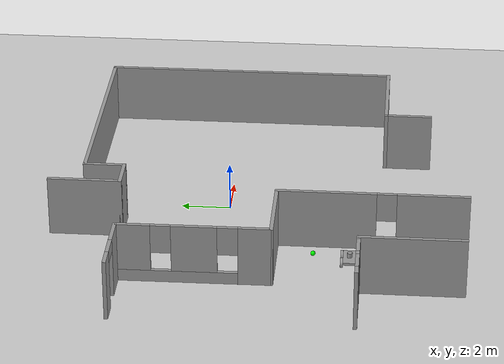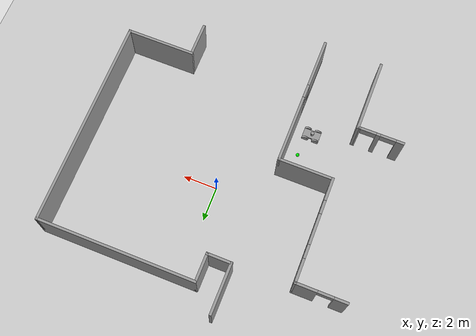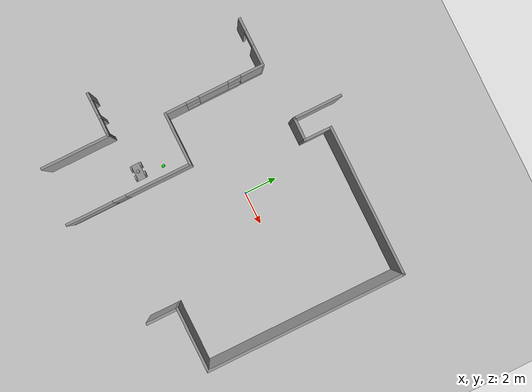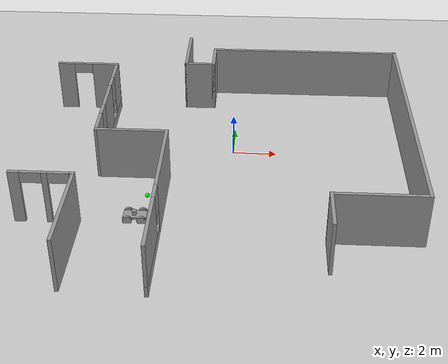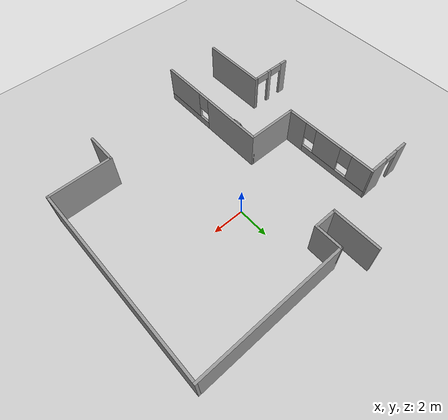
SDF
<sdf version="1.7">
 <world name="__default__">
  <model name="building2">
   <pose>-0.46436 -1.33709 0 0 -0 0</pose>
   <link name="Wall_1">
    <collision name="Wall_1_Collision">
     <geometry><box><size>3.25 0.15 2.5</size></box></geometry>
     <pose>0 0 1.25 0 -0 0</pose>
    </collision>
    <visual name="Wall_1_Visual">
     <pose>0 0 1.25 0 -0 0</pose>
     <geometry><box><size>3.25 0.15 2.5</size></box></geometry>
     <material>
      <script><uri>file://media/materials/scripts/gazebo.material</uri><name>Gazebo/Grey</name></script>
      <ambient>1 1 1 1</ambient>
     </material>
     <meta><layer>0</layer></meta>
    </visual>
    <pose>-3.91564 -0.782909 0 0 -0 0</pose>
   </link>
   <link name="Wall_10">
    <pose>-6.93769 5.27004 0 0 -0 3.14159</pose>
    <visual name="Wall_10_Visual_0">
     <pose>-0.850707 0 1.25 0 -0 0</pose>
     <geometry><box><size>1.29859 0.15 2.5</size></box></geometry>
     <material>
      <script><uri>file://media/materials/scripts/gazebo.material</uri><name>Gazebo/Grey</name></script>
      <ambient>1 1 1 1</ambient>
     </material>
     <meta><layer>0</layer></meta>
    </visual>
    <collision name="Wall_10_Collision_0">
     <geometry><box><size>1.29859 0.15 2.5</size></box></geometry>
     <pose>-0.850707 0 1.25 0 -0 0</pose>
    </collision>
    <visual name="Wall_10_Visual_1">
     <pose>1.09929 0 1.25 0 -0 0</pose>
     <geometry><box><size>0.801414 0.15 2.5</size></box></geometry>
     <material>
      <script><uri>file://media/materials/scripts/gazebo.material</uri><name>Gazebo/Grey</name></script>
      <ambient>1 1 1 1</ambient>
     </material>
     <meta><layer>0</layer></meta>
    </visual>
    <collision name="Wall_10_Collision_1">
     <geometry><box><size>0.801414 0.15 2.5</size></box></geometry>
     <pose>1.09929 0 1.25 0 -0 0</pose>
    </collision>
    <visual name="Wall_10_Visual_2">
     <pose>0.248586 0 2.25 0 -0 0</pose>
     <geometry><box><size>0.9 0.15 0.5</size></box></geometry>
     <material>
      <script><uri>file://media/materials/scripts/gazebo.material</uri><name>Gazebo/Grey</name></script>
      <ambient>1 1 1 1</ambient>
     </material>
     <meta><layer>0</layer></meta>
    </visual>
    <collision name="Wall_10_Collision_2">
     <geometry><box><size>0.9 0.15 0.5</size></box></geometry>
     <pose>0.248586 0 2.25 0 -0 0</pose>
    </collision>
   </link>
   <link name="Wall_13">
    <collision name="Wall_13_Collision">
     <geometry><box><size>3 0.15 2.5</size></box></geometry>
     <pose>0 0 1.25 0 -0 0</pose>
    </collision>
    <visual name="Wall_13_Visual">
     <pose>0 0 1.25 0 -0 0</pose>
     <geometry><box><size>3 0.15 2.5</size></box></geometry>
     <material>
      <script><uri>file://media/materials/scripts/gazebo.material</uri><name>Gazebo/Grey</name></script>
      <ambient>1 1 1 1</ambient>
     </material>
     <meta><layer>0</layer></meta>
    </visual>
    <pose>-2.07281 6.95791 0 0 -0 -1.5708</pose>
   </link>
   <link name="Wall_14">
    <collision name="Wall_14_Collision">
     <geometry><box><size>1.5 0.15 2.5</size></box></geometry>
     <pose>0 0 1.25 0 -0 0</pose>
    </collision>
    <visual name="Wall_14_Visual">
     <pose>0 0 1.25 0 -0 0</pose>
     <geometry><box><size>1.5 0.15 2.5</size></box></geometry>
     <material>
      <script><uri>file://media/materials/scripts/gazebo.material</uri><name>Gazebo/Grey</name></script>
      <ambient>1 1 1 1</ambient>
     </material>
     <meta><layer>0</layer></meta>
    </visual>
    <pose>-1.39781 5.53291 0 0 -0 0</pose>
   </link>
   <link name="Wall_15">
    <collision name="Wall_15_Collision">
     <geometry><box><size>1.75 0.15 2.5</size></box></geometry>
     <pose>0 0 1.25 0 -0 0</pose>
    </collision>
    <visual name="Wall_15_Visual">
     <pose>0 0 1.25 0 -0 0</pose>
     <geometry><box><size>1.75 0.15 2.5</size></box></geometry>
     <material>
      <script><uri>file://media/materials/scripts/gazebo.material</uri><name>Gazebo/Grey</name></script>
      <ambient>1 1 1 1</ambient>
     </material>
     <meta><layer>0</layer></meta>
    </visual>
    <pose>-0.722812 6.33291 0 0 -0 1.5708</pose>
   </link>
   <link name="Wall_16">
    <collision name="Wall_16_Collision">
     <geometry><box><size>9.25 0.15 2.5</size></box></geometry>
     <pose>0 0 1.25 0 -0 0</pose>
    </collision>
    <visual name="Wall_16_Visual">
     <pose>0 0 1.25 0 -0 0</pose>
     <geometry><box><size>9.25 0.15 2.5</size></box></geometry>
     <material>
      <script><uri>file://media/materials/scripts/gazebo.material</uri><name>Gazebo/Grey</name></script>
      <ambient>1 1 1 1</ambient>
     </material>
     <meta><layer>0</layer></meta>
    </visual>
    <pose>3.82719 7.13291 0 0 -0 0</pose>
   </link>
   <link name="Wall_18">
    <collision name="Wall_18_Collision">
     <geometry><box><size>12.25 0.15 2.5</size></box></geometry>
     <pose>0 0 1.25 0 -0 0</pose>
    </collision>
    <visual name="Wall_18_Visual">
     <pose>0 0 1.25 0 -0 0</pose>
     <geometry><box><size>12.25 0.15 2.5</size></box></geometry>
     <material>
      <script><uri>file://media/materials/scripts/gazebo.material</uri><name>Gazebo/Grey</name></script>
      <ambient>1 1 1 1</ambient>
     </material>
     <meta><layer>0</layer></meta>
    </visual>
    <pose>8.37719 1.08291 0 0 -0 -1.5708</pose>
   </link>
   <link name="Wall_2">
    <pose>-2.36564 -4.58291 0 0 -0 -1.5708</pose>
    <visual name="Wall_2_Visual_0">
     <pose>-1.85139 0 1.25 0 -0 0</pose>
     <geometry><box><size>4.04722 0.15 2.5</size></box></geometry>
     <material>
      <script><uri>file://media/materials/scripts/gazebo.material</uri><name>Gazebo/Grey</name></script>
      <ambient>1 1 1 1</ambient>
     </material>
     <meta><layer>0</layer></meta>
    </visual>
    <collision name="Wall_2_Collision_0">
     <geometry><box><size>4.04722 0.15 2.5</size></box></geometry>
     <pose>-1.85139 0 1.25 0 -0 0</pose>
    </collision>
    <visual name="Wall_2_Visual_1">
     <pose>2.02361 0 0.25 0 -0 0</pose>
     <geometry><box><size>3.70278 0.15 0.5</size></box></geometry>
     <material>
      <script><uri>file://media/materials/scripts/gazebo.material</uri><name>Gazebo/Grey</name></script>
      <ambient>1 1 1 1</ambient>
     </material>
     <meta><layer>0</layer></meta>
    </visual>
    <collision name="Wall_2_Collision_1">
     <geometry><box><size>3.70278 0.15 0.5</size></box></geometry>
     <pose>2.02361 0 0.25 0 -0 0</pose>
    </collision>
    <visual name="Wall_2_Visual_2">
     <pose>2.42361 0 1.5 0 -0 0</pose>
     <geometry><box><size>2.90278 0.15 2</size></box></geometry>
     <material>
      <script><uri>file://media/materials/scripts/gazebo.material</uri><name>Gazebo/Grey</name></script>
      <ambient>1 1 1 1</ambient>
     </material>
     <meta><layer>0</layer></meta>
    </visual>
    <collision name="Wall_2_Collision_2">
     <geometry><box><size>2.90278 0.15 2</size></box></geometry>
     <pose>2.42361 0 1.5 0 -0 0</pose>
    </collision>
    <visual name="Wall_2_Visual_3">
     <pose>0.57222 0 1.9 0 -0 0</pose>
     <geometry><box><size>0.8 0.15 1.2</size></box></geometry>
     <material>
      <script><uri>file://media/materials/scripts/gazebo.material</uri><name>Gazebo/Grey</name></script>
      <ambient>1 1 1 1</ambient>
     </material>
     <meta><layer>0</layer></meta>
    </visual>
    <collision name="Wall_2_Collision_3">
     <geometry><box><size>0.8 0.15 1.2</size></box></geometry>
     <pose>0.57222 0 1.9 0 -0 0</pose>
    </collision>
   </link>
   <link name="Wall_21">
    <collision name="Wall_21_Collision">
     <geometry><box><size>4 0.15 2.5</size></box></geometry>
     <pose>0 0 1.25 0 -0 0</pose>
    </collision>
    <visual name="Wall_21_Visual">
     <pose>0 0 1.25 0 -0 0</pose>
     <geometry><box><size>4 0.15 2.5</size></box></geometry>
     <material>
      <script><uri>file://media/materials/scripts/gazebo.material</uri><name>Gazebo/Grey</name></script>
      <ambient>1 1 1 1</ambient>
     </material>
     <meta><layer>0</layer></meta>
    </visual>
    <pose>6.45219 -4.96709 0 0 -0 3.14159</pose>
   </link>
   <link name="Wall_22">
    <collision name="Wall_22_Collision">
     <geometry><box><size>2 0.15 2.5</size></box></geometry>
     <pose>0 0 1.25 0 -0 0</pose>
    </collision>
    <visual name="Wall_22_Visual">
     <pose>0 0 1.25 0 -0 0</pose>
     <geometry><box><size>2 0.15 2.5</size></box></geometry>
     <material>
      <script><uri>file://media/materials/scripts/gazebo.material</uri><name>Gazebo/Grey</name></script>
      <ambient>1 1 1 1</ambient>
     </material>
     <meta><layer>0</layer></meta>
    </visual>
    <pose>4.52719 -5.89209 0 0 -0 -1.5708</pose>
   </link>
   <link name="Wall_5">
    <collision name="Wall_5_Collision">
     <geometry><box><size>4.25 0.15 2.5</size></box></geometry>
     <pose>0 0 1.25 0 -0 0</pose>
    </collision>
    <visual name="Wall_5_Visual">
     <pose>0 0 1.25 0 -0 0</pose>
     <geometry><box><size>4.25 0.15 2.5</size></box></geometry>
     <material>
      <script><uri>file://media/materials/scripts/gazebo.material</uri><name>Gazebo/Grey</name></script>
      <ambient>1 1 1 1</ambient>
     </material>
     <meta><layer>0</layer></meta>
    </visual>
    <pose>-5.77719 -6.20253 0 0 -0 -1.5708</pose>
   </link>
   <link name="Wall_7">
    <pose>-7.07719 -4.15253 0 0 -0 3.14159</pose>
    <visual name="Wall_7_Visual_0">
     <pose>-1.25987 0 1.25 0 -0 0</pose>
     <geometry><box><size>0.230254 0.15 2.5</size></box></geometry>
     <material>
      <script><uri>file://media/materials/scripts/gazebo.material</uri><name>Gazebo/Grey</name></script>
      <ambient>1 1 1 1</ambient>
     </material>
     <meta><layer>0</layer></meta>
    </visual>
    <collision name="Wall_7_Collision_0">
     <geometry><box><size>0.230254 0.15 2.5</size></box></geometry>
     <pose>-1.25987 0 1.25 0 -0 0</pose>
    </collision>
    <visual name="Wall_7_Visual_1">
     <pose>-0.1243 0 1.25 0 -0 0</pose>
     <geometry><box><size>0.240891 0.15 2.5</size></box></geometry>
     <material>
      <script><uri>file://media/materials/scripts/gazebo.material</uri><name>Gazebo/Grey</name></script>
      <ambient>1 1 1 1</ambient>
     </material>
     <meta><layer>0</layer></meta>
    </visual>
    <collision name="Wall_7_Collision_1">
     <geometry><box><size>0.240891 0.15 2.5</size></box></geometry>
     <pose>-0.1243 0 1.25 0 -0 0</pose>
    </collision>
    <visual name="Wall_7_Visual_2">
     <pose>1.13557 0 1.25 0 -0 0</pose>
     <geometry><box><size>0.478854 0.15 2.5</size></box></geometry>
     <material>
      <script><uri>file://media/materials/scripts/gazebo.material</uri><name>Gazebo/Grey</name></script>
      <ambient>1 1 1 1</ambient>
     </material>
     <meta><layer>0</layer></meta>
    </visual>
    <collision name="Wall_7_Collision_2">
     <geometry><box><size>0.478854 0.15 2.5</size></box></geometry>
     <pose>1.13557 0 1.25 0 -0 0</pose>
    </collision>
    <visual name="Wall_7_Visual_3">
     <pose>-0.694746 0 2.25 0 -0 0</pose>
     <geometry><box><size>0.9 0.15 0.5</size></box></geometry>
     <material>
      <script><uri>file://media/materials/scripts/gazebo.material</uri><name>Gazebo/Grey</name></script>
      <ambient>1 1 1 1</ambient>
     </material>
     <meta><layer>0</layer></meta>
    </visual>
    <collision name="Wall_7_Collision_3">
     <geometry><box><size>0.9 0.15 0.5</size></box></geometry>
     <pose>-0.694746 0 2.25 0 -0 0</pose>
    </collision>
    <visual name="Wall_7_Visual_4">
     <pose>0.446146 0 2.25 0 -0 0</pose>
     <geometry><box><size>0.9 0.15 0.5</size></box></geometry>
     <material>
      <script><uri>file://media/materials/scripts/gazebo.material</uri><name>Gazebo/Grey</name></script>
      <ambient>1 1 1 1</ambient>
     </material>
     <meta><layer>0</layer></meta>
    </visual>
    <collision name="Wall_7_Collision_4">
     <geometry><box><size>0.9 0.15 0.5</size></box></geometry>
     <pose>0.446146 0 2.25 0 -0 0</pose>
    </collision>
   </link>
   <link name="Wall_9">
    <pose>-5.48916 2.24356 0 0 -0 1.57857</pose>
    <visual name="Wall_9_Visual_0">
     <pose>-2.41932 0 1.25 0 -0 0</pose>
     <geometry><box><size>1.36504 0.15 2.5</size></box></geometry>
     <material>
      <script><uri>file://media/materials/scripts/gazebo.material</uri><name>Gazebo/Grey</name></script>
      <ambient>1 1 1 1</ambient>
     </material>
     <meta><layer>0</layer></meta>
    </visual>
    <collision name="Wall_9_Collision_0">
     <geometry><box><size>1.36504 0.15 2.5</size></box></geometry>
     <pose>-2.41932 0 1.25 0 -0 0</pose>
    </collision>
    <visual name="Wall_9_Visual_1">
     <pose>0.682521 0 0.25 0 -0 0</pose>
     <geometry><box><size>4.83864 0.15 0.5</size></box></geometry>
     <material>
      <script><uri>file://media/materials/scripts/gazebo.material</uri><name>Gazebo/Grey</name></script>
      <ambient>1 1 1 1</ambient>
     </material>
     <meta><layer>0</layer></meta>
    </visual>
    <collision name="Wall_9_Collision_1">
     <geometry><box><size>4.83864 0.15 0.5</size></box></geometry>
     <pose>0.682521 0 0.25 0 -0 0</pose>
    </collision>
    <visual name="Wall_9_Visual_2">
     <pose>-0.039376 0 1.5 0 -0 0</pose>
     <geometry><box><size>1.79484 0.15 2</size></box></geometry>
     <material>
      <script><uri>file://media/materials/scripts/gazebo.material</uri><name>Gazebo/Grey</name></script>
      <ambient>1 1 1 1</ambient>
     </material>
     <meta><layer>0</layer></meta>
    </visual>
    <collision name="Wall_9_Collision_2">
     <geometry><box><size>1.79484 0.15 2</size></box></geometry>
     <pose>-0.039376 0 1.5 0 -0 0</pose>
    </collision>
    <visual name="Wall_9_Visual_3">
     <pose>2.37994 0 1.5 0 -0 0</pose>
     <geometry><box><size>1.44379 0.15 2</size></box></geometry>
     <material>
      <script><uri>file://media/materials/scripts/gazebo.material</uri><name>Gazebo/Grey</name></script>
      <ambient>1 1 1 1</ambient>
     </material>
     <meta><layer>0</layer></meta>
    </visual>
    <collision name="Wall_9_Collision_3">
     <geometry><box><size>1.44379 0.15 2</size></box></geometry>
     <pose>2.37994 0 1.5 0 -0 0</pose>
    </collision>
    <visual name="Wall_9_Visual_4">
     <pose>-1.3368 0 1.9 0 -0 0</pose>
     <geometry><box><size>0.8 0.15 1.2</size></box></geometry>
     <material>
      <script><uri>file://media/materials/scripts/gazebo.material</uri><name>Gazebo/Grey</name></script>
      <ambient>1 1 1 1</ambient>
     </material>
     <meta><layer>0</layer></meta>
    </visual>
    <collision name="Wall_9_Collision_4">
     <geometry><box><size>0.8 0.15 1.2</size></box></geometry>
     <pose>-1.3368 0 1.9 0 -0 0</pose>
    </collision>
    <visual name="Wall_9_Visual_5">
     <pose>1.25805 0 1.9 0 -0 0</pose>
     <geometry><box><size>0.8 0.15 1.2</size></box></geometry>
     <material>
      <script><uri>file://media/materials/scripts/gazebo.material</uri><name>Gazebo/Grey</name></script>
      <ambient>1 1 1 1</ambient>
     </material>
     <meta><layer>0</layer></meta>
    </visual>
    <collision name="Wall_9_Collision_5">
     <geometry><box><size>0.8 0.15 1.2</size></box></geometry>
     <pose>1.25805 0 1.9 0 -0 0</pose>
    </collision>
   </link>
   <static>1</static>
  </model>
  <model name="simplecar">
   <link name="link_0">
    <inertial>
     <mass>1</mass>
     <inertia>
      <ixx>0.166667</ixx>
      <ixy>0</ixy>
      <ixz>0</ixz>
      <iyy>0.166667</iyy>
      <iyz>0</iyz>
      <izz>0.166667</izz>
     </inertia>
    </inertial>
    <pose>0.003333 0.003333 0.147691 0 -0 0</pose>
    <visual name="visual">
     <geometry><box><size>1 0.5 0.1</size></box></geometry>
     <material>
      <lighting>1</lighting>
      <script><uri>file://media/materials/scripts/gazebo.material</uri><name>Gazebo/Grey</name></script>
      <shader type="pixel"><normal_map>__default__</normal_map></shader>
      <ambient>0.3 0.3 0.3 1</ambient>
      <diffuse>0.7 0.7 0.7 1</diffuse>
      <specular>0.01 0.01 0.01 1</specular>
      <emissive>0 0 0 1</emissive>
     </material>
    </visual>
    <collision name="collision">
     <geometry><box><size>1 0.5 0.1</size></box></geometry>
     <surface>
      <friction>
       <ode><mu>1</mu><mu2>1</mu2><fdir1>0 0 0</fdir1><slip1>0</slip1><slip2>0</slip2></ode>
       <torsional>
        <coefficient>1</coefficient>
        <patch_radius>0</patch_radius>
        <surface_radius>0</surface_radius>
        <use_patch_radius>1</use_patch_radius>
        <ode><slip>0</slip></ode>
       </torsional>
      </friction>
      <bounce><restitution_coefficient>0</restitution_coefficient><threshold>1e+06</threshold></bounce>
      <contact>
       <collide_without_contact>0</collide_without_contact>
       <collide_without_contact_bitmask>1</collide_without_contact_bitmask>
       <collide_bitmask>1</collide_bitmask>
       <ode>
        <soft_cfm>0</soft_cfm>
        <soft_erp>0.2</soft_erp>
        <kp>1e+13</kp>
        <kd>1</kd>
        <max_vel>0.01</max_vel>
        <min_depth>0</min_depth>
       </ode>
       <bullet>
        <split_impulse>1</split_impulse>
        <split_impulse_penetration_threshold>-0.01</split_impulse_penetration_threshold>
        <soft_cfm>0</soft_cfm>
        <soft_erp>0.2</soft_erp>
        <kp>1e+13</kp>
        <kd>1</kd>
       </bullet>
      </contact>
     </surface>
    </collision>
   </link>
   <link name="link_1">
    <inertial>
     <mass>1</mass>
     <inertia><ixx>0.145833</ixx><ixy>0</ixy><ixz>0</ixz><iyy>0.145833</iyy><iyz>0</iyz><izz>0.125</izz></inertia>
    </inertial>
    <pose>-0.296667 0.303353 -0.112314 0 -0 0</pose>
    <visual name="visual">
     <pose>0 0 0.2 1.5707 -0 0</pose>
     <geometry><cylinder><radius>0.2</radius><length>0.1</length></cylinder></geometry>
     <material>
      <lighting>1</lighting>
      <script><uri>file://media/materials/scripts/gazebo.material</uri><name>Gazebo/Grey</name></script>
      <shader type="pixel"><normal_map>__default__</normal_map></shader>
      <ambient>0.3 0.3 0.3 1</ambient>
      <diffuse>0.7 0.7 0.7 1</diffuse>
      <specular>0.01 0.01 0.01 1</specular>
      <emissive>0 0 0 1</emissive>
     </material>
    </visual>
    <collision name="collision">
     <pose>0 0 0.2 1.5707 -0 0</pose>
     <geometry><cylinder><radius>0.2</radius><length>0.1</length></cylinder></geometry>
     <surface>
      <friction>
       <ode><mu>1</mu><mu2>1</mu2><fdir1>0 0 0</fdir1><slip1>0</slip1><slip2>0</slip2></ode>
       <torsional>
        <coefficient>1</coefficient>
        <patch_radius>0</patch_radius>
        <surface_radius>0</surface_radius>
        <use_patch_radius>1</use_patch_radius>
        <ode><slip>0</slip></ode>
       </torsional>
      </friction>
      <bounce><restitution_coefficient>0</restitution_coefficient><threshold>1e+06</threshold></bounce>
      <contact>
       <collide_without_contact>0</collide_without_contact>
       <collide_without_contact_bitmask>1</collide_without_contact_bitmask>
       <collide_bitmask>1</collide_bitmask>
       <ode>
        <soft_cfm>0</soft_cfm>
        <soft_erp>0.2</soft_erp>
        <kp>1e+13</kp>
        <kd>1</kd>
        <max_vel>0.01</max_vel>
        <min_depth>0</min_depth>
       </ode>
       <bullet>
        <split_impulse>1</split_impulse>
        <split_impulse_penetration_threshold>-0.01</split_impulse_penetration_threshold>
        <soft_cfm>0</soft_cfm>
        <soft_erp>0.2</soft_erp>
        <kp>1e+13</kp>
        <kd>1</kd>
       </bullet>
      </contact>
     </surface>
    </collision>
   </link>
   <link name="link_1_clone_0">
    <inertial>
     <mass>1</mass>
     <inertia><ixx>0.145833</ixx><ixy>0</ixy><ixz>0</ixz><iyy>0.145833</iyy><iyz>0</iyz><izz>0.125</izz></inertia>
    </inertial>
    <pose>0.303333 0.303353 -0.112314 0 -0 0</pose>
    <visual name="visual">
     <pose>0 0 0.2 1.5707 -0 0</pose>
     <geometry><cylinder><radius>0.2</radius><length>0.1</length></cylinder></geometry>
     <material>
      <lighting>1</lighting>
      <script><uri>file://media/materials/scripts/gazebo.material</uri><name>Gazebo/Grey</name></script>
      <shader type="pixel"><normal_map>__default__</normal_map></shader>
      <ambient>0.3 0.3 0.3 1</ambient>
      <diffuse>0.7 0.7 0.7 1</diffuse>
      <specular>0.01 0.01 0.01 1</specular>
      <emissive>0 0 0 1</emissive>
     </material>
    </visual>
    <collision name="collision">
     <pose>0 0 0.2 1.5707 -0 0</pose>
     <geometry><cylinder><radius>0.2</radius><length>0.1</length></cylinder></geometry>
     <surface>
      <friction>
       <ode><mu>1</mu><mu2>1</mu2><fdir1>0 0 0</fdir1><slip1>0</slip1><slip2>0</slip2></ode>
       <torsional>
        <coefficient>1</coefficient>
        <patch_radius>0</patch_radius>
        <surface_radius>0</surface_radius>
        <use_patch_radius>1</use_patch_radius>
        <ode><slip>0</slip></ode>
       </torsional>
      </friction>
      <bounce><restitution_coefficient>0</restitution_coefficient><threshold>1e+06</threshold></bounce>
      <contact>
       <collide_without_contact>0</collide_without_contact>
       <collide_without_contact_bitmask>1</collide_without_contact_bitmask>
       <collide_bitmask>1</collide_bitmask>
       <ode>
        <soft_cfm>0</soft_cfm>
        <soft_erp>0.2</soft_erp>
        <kp>1e+13</kp>
        <kd>1</kd>
        <max_vel>0.01</max_vel>
        <min_depth>0</min_depth>
       </ode>
       <bullet>
        <split_impulse>1</split_impulse>
        <split_impulse_penetration_threshold>-0.01</split_impulse_penetration_threshold>
        <soft_cfm>0</soft_cfm>
        <soft_erp>0.2</soft_erp>
        <kp>1e+13</kp>
        <kd>1</kd>
       </bullet>
      </contact>
     </surface>
    </collision>
   </link>
   <link name="link_1_clone_1">
    <inertial>
     <mass>1</mass>
     <inertia><ixx>0.145833</ixx><ixy>0</ixy><ixz>0</ixz><iyy>0.145833</iyy><iyz>0</iyz><izz>0.125</izz></inertia>
    </inertial>
    <pose>0.303333 -0.296686 -0.112314 0 -0 0</pose>
    <visual name="visual">
     <pose>0 0 0.2 1.5707 -0 0</pose>
     <geometry><cylinder><radius>0.2</radius><length>0.1</length></cylinder></geometry>
     <material>
      <lighting>1</lighting>
      <script><uri>file://media/materials/scripts/gazebo.material</uri><name>Gazebo/Grey</name></script>
      <shader type="pixel"><normal_map>__default__</normal_map></shader>
      <ambient>0.3 0.3 0.3 1</ambient>
      <diffuse>0.7 0.7 0.7 1</diffuse>
      <specular>0.01 0.01 0.01 1</specular>
      <emissive>0 0 0 1</emissive>
     </material>
    </visual>
    <collision name="collision">
     <pose>0 0 0.2 1.5707 -0 0</pose>
     <geometry><cylinder><radius>0.2</radius><length>0.1</length></cylinder></geometry>
     <surface>
      <friction>
       <ode><mu>1</mu><mu2>1</mu2><fdir1>0 0 0</fdir1><slip1>0</slip1><slip2>0</slip2></ode>
       <torsional>
        <coefficient>1</coefficient>
        <patch_radius>0</patch_radius>
        <surface_radius>0</surface_radius>
        <use_patch_radius>1</use_patch_radius>
        <ode><slip>0</slip></ode>
       </torsional>
      </friction>
      <bounce><restitution_coefficient>0</restitution_coefficient><threshold>1e+06</threshold></bounce>
      <contact>
       <collide_without_contact>0</collide_without_contact>
       <collide_without_contact_bitmask>1</collide_without_contact_bitmask>
       <collide_bitmask>1</collide_bitmask>
       <ode>
        <soft_cfm>0</soft_cfm>
        <soft_erp>0.2</soft_erp>
        <kp>1e+13</kp>
        <kd>1</kd>
        <max_vel>0.01</max_vel>
        <min_depth>0</min_depth>
       </ode>
       <bullet>
        <split_impulse>1</split_impulse>
        <split_impulse_penetration_threshold>-0.01</split_impulse_penetration_threshold>
        <soft_cfm>0</soft_cfm>
        <soft_erp>0.2</soft_erp>
        <kp>1e+13</kp>
        <kd>1</kd>
       </bullet>
      </contact>
     </surface>
    </collision>
   </link>
   <link name="link_1_clone_1_clone">
    <inertial>
     <mass>1</mass>
     <inertia><ixx>0.145833</ixx><ixy>0</ixy><ixz>0</ixz><iyy>0.145833</iyy><iyz>0</iyz><izz>0.125</izz></inertia>
    </inertial>
    <pose>-0.296667 -0.296686 -0.112314 0 -0 0</pose>
    <visual name="visual">
     <pose>0 0 0.2 1.5707 -0 0</pose>
     <geometry><cylinder><radius>0.2</radius><length>0.1</length></cylinder></geometry>
     <material>
      <lighting>1</lighting>
      <script><uri>file://media/materials/scripts/gazebo.material</uri><name>Gazebo/Grey</name></script>
      <shader type="pixel"><normal_map>__default__</normal_map></shader>
      <ambient>0.3 0.3 0.3 1</ambient>
      <diffuse>0.7 0.7 0.7 1</diffuse>
      <specular>0.01 0.01 0.01 1</specular>
      <emissive>0 0 0 1</emissive>
     </material>
    </visual>
    <collision name="collision">
     <pose>0 0 0.2 1.5707 -0 0</pose>
     <geometry><cylinder><radius>0.2</radius><length>0.1</length></cylinder></geometry>
     <surface>
      <friction>
       <ode><mu>1</mu><mu2>1</mu2><fdir1>0 0 0</fdir1><slip1>0</slip1><slip2>0</slip2></ode>
       <torsional>
        <coefficient>1</coefficient>
        <patch_radius>0</patch_radius>
        <surface_radius>0</surface_radius>
        <use_patch_radius>1</use_patch_radius>
        <ode><slip>0</slip></ode>
       </torsional>
      </friction>
      <bounce><restitution_coefficient>0</restitution_coefficient><threshold>1e+06</threshold></bounce>
      <contact>
       <collide_without_contact>0</collide_without_contact>
       <collide_without_contact_bitmask>1</collide_without_contact_bitmask>
       <collide_bitmask>1</collide_bitmask>
       <ode>
        <soft_cfm>0</soft_cfm>
        <soft_erp>0.2</soft_erp>
        <kp>1e+13</kp>
        <kd>1</kd>
        <max_vel>0.01</max_vel>
        <min_depth>0</min_depth>
       </ode>
       <bullet>
        <split_impulse>1</split_impulse>
        <split_impulse_penetration_threshold>-0.01</split_impulse_penetration_threshold>
        <soft_cfm>0</soft_cfm>
        <soft_erp>0.2</soft_erp>
        <kp>1e+13</kp>
        <kd>1</kd>
       </bullet>
      </contact>
     </surface>
    </collision>
   </link>
   <link name="link_3">
    <inertial>
     <mass>1</mass>
     <inertia><ixx>0.145833</ixx><ixy>0</ixy><ixz>0</ixz><iyy>0.145833</iyy><iyz>0</iyz><izz>0.125</izz></inertia>
    </inertial>
    <pose>-0.016667 -0.016667 0.301567 0 -0 0</pose>
    <visual name="visual">
     <geometry><cylinder><radius>0.1</radius><length>0.2</length></cylinder></geometry>
     <material>
      <lighting>1</lighting>
      <script><uri>file://media/materials/scripts/gazebo.material</uri><name>Gazebo/Grey</name></script>
      <shader type="pixel"><normal_map>__default__</normal_map></shader>
      <ambient>0.3 0.3 0.3 1</ambient>
      <diffuse>0.7 0.7 0.7 1</diffuse>
      <specular>0.01 0.01 0.01 1</specular>
      <emissive>0 0 0 1</emissive>
     </material>
    </visual>
    <collision name="collision">
     <geometry><cylinder><radius>0.1</radius><length>0.2</length></cylinder></geometry>
     <surface>
      <friction>
       <ode><mu>1</mu><mu2>1</mu2><fdir1>0 0 0</fdir1><slip1>0</slip1><slip2>0</slip2></ode>
       <torsional>
        <coefficient>1</coefficient>
        <patch_radius>0</patch_radius>
        <surface_radius>0</surface_radius>
        <use_patch_radius>1</use_patch_radius>
        <ode><slip>0</slip></ode>
       </torsional>
      </friction>
      <bounce><restitution_coefficient>0</restitution_coefficient><threshold>1e+06</threshold></bounce>
      <contact>
       <collide_without_contact>0</collide_without_contact>
       <collide_without_contact_bitmask>1</collide_without_contact_bitmask>
       <collide_bitmask>1</collide_bitmask>
       <ode>
        <soft_cfm>0</soft_cfm>
        <soft_erp>0.2</soft_erp>
        <kp>1e+13</kp>
        <kd>1</kd>
        <max_vel>0.01</max_vel>
        <min_depth>0</min_depth>
       </ode>
       <bullet>
        <split_impulse>1</split_impulse>
        <split_impulse_penetration_threshold>-0.01</split_impulse_penetration_threshold>
        <soft_cfm>0</soft_cfm>
        <soft_erp>0.2</soft_erp>
        <kp>1e+13</kp>
        <kd>1</kd>
       </bullet>
      </contact>
     </surface>
    </collision>
   </link>
   <joint name="link_0_JOINT_1" type="revolute">
    <parent>link_0</parent>
    <child>link_1</child>
    <axis>
     <xyz>1 0 0</xyz>
     <limit>
      <lower>-1.79769e+308</lower>
      <upper>1.79769e+308</upper>
      <effort>-1</effort>
      <velocity>-1</velocity>
     </limit>
     <dynamics>
      <spring_reference>0</spring_reference>
      <spring_stiffness>0</spring_stiffness>
      <damping>0</damping>
      <friction>0</friction>
     </dynamics>
    </axis>
    <physics>
     <ode><limit><cfm>0</cfm><erp>0.2</erp></limit><suspension><cfm>0</cfm><erp>0.2</erp></suspension></ode>
    </physics>
   </joint>
   <joint name="link_0_JOINT_2" type="revolute">
    <parent>link_0</parent>
    <child>link_1_clone_1_clone</child>
    <axis>
     <xyz>0 0 1</xyz>
     <limit>
      <lower>-1.79769e+308</lower>
      <upper>1.79769e+308</upper>
      <effort>-1</effort>
      <velocity>-1</velocity>
     </limit>
     <dynamics>
      <spring_reference>0</spring_reference>
      <spring_stiffness>0</spring_stiffness>
      <damping>0</damping>
      <friction>0</friction>
     </dynamics>
    </axis>
    <physics>
     <ode><limit><cfm>0</cfm><erp>0.2</erp></limit><suspension><cfm>0</cfm><erp>0.2</erp></suspension></ode>
    </physics>
   </joint>
   <joint name="link_0_JOINT_3" type="revolute">
    <parent>link_0</parent>
    <child>link_1_clone_1</child>
    <axis>
     <xyz>0 0 1</xyz>
     <limit>
      <lower>-1.79769e+308</lower>
      <upper>1.79769e+308</upper>
      <effort>-1</effort>
      <velocity>-1</velocity>
     </limit>
     <dynamics>
      <spring_reference>0</spring_reference>
      <spring_stiffness>0</spring_stiffness>
      <damping>0</damping>
      <friction>0</friction>
     </dynamics>
    </axis>
    <physics>
     <ode><limit><cfm>0</cfm><erp>0.2</erp></limit><suspension><cfm>0</cfm><erp>0.2</erp></suspension></ode>
    </physics>
   </joint>
   <joint name="link_0_JOINT_4" type="revolute">
    <parent>link_0</parent>
    <child>link_1_clone_0</child>
    <axis>
     <xyz>0 0 1</xyz>
     <limit>
      <lower>-1.79769e+308</lower>
      <upper>1.79769e+308</upper>
      <effort>-1</effort>
      <velocity>-1</velocity>
     </limit>
     <dynamics>
      <spring_reference>0</spring_reference>
      <spring_stiffness>0</spring_stiffness>
      <damping>0</damping>
      <friction>0</friction>
     </dynamics>
    </axis>
    <physics>
     <ode><limit><cfm>0</cfm><erp>0.2</erp></limit><suspension><cfm>0</cfm><erp>0.2</erp></suspension></ode>
    </physics>
   </joint>
   <joint name="link_0_JOINT_5" type="fixed">
    <parent>link_0</parent>
    <child>link_3</child>
    <physics>
     <ode><limit><cfm>0</cfm><erp>0.2</erp></limit><suspension><cfm>0</cfm><erp>0.2</erp></suspension></ode>
    </physics>
   </joint>
   <static>1</static>
   <pose>-3.9241 -5.09042 0 0 -0 0</pose>
  </model>
  <model name="ground_plane">
   <static>1</static>
   <link name="link">
    <collision name="collision">
     <geometry><plane><normal>0 0 1</normal><size>100 100</size></plane></geometry>
     <surface>
      <contact><collide_bitmask>65535</collide_bitmask></contact>
      <friction><ode><mu>100</mu><mu2>50</mu2></ode></friction>
     </surface>
    </collision>
    <visual name="visual">
     <cast_shadows>0</cast_shadows>
     <geometry><plane><normal>0 0 1</normal><size>100 100</size></plane></geometry>
     <material>
      <script><uri>file://media/materials/scripts/gazebo.material</uri><name>Gazebo/Grey</name></script>
     </material>
    </visual>
   </link>
   <pose>-59.0264 48.4098 0 0 -0 0</pose>
  </model>
  <model name="greenball">
   <link name="link_0">
    <inertial>
     <mass>1</mass>
     <inertia><ixx>0.1</ixx><ixy>0</ixy><ixz>0</ixz><iyy>0.1</iyy><iyz>0</iyz><izz>0.1</izz></inertia>
    </inertial>
    <visual name="visual">
     <geometry><sphere><radius>0.1</radius></sphere></geometry>
     <material>
      <lighting>1</lighting>
      <script><uri>file://media/materials/scripts/gazebo.material</uri><name>Gazebo/Grey</name></script>
      <shader type="pixel"><normal_map>__default__</normal_map></shader>
      <ambient>0 1 0 1</ambient>
      <diffuse>0.7 0.7 0.7 1</diffuse>
      <specular>0.01 0.01 0.01 1</specular>
      <emissive>0 0 0 1</emissive>
     </material>
    </visual>
    <collision name="collision">
     <geometry><sphere><radius>0.1</radius></sphere></geometry>
     <surface>
      <friction>
       <ode><mu>1</mu><mu2>1</mu2><fdir1>0 0 0</fdir1><slip1>0</slip1><slip2>0</slip2></ode>
       <torsional>
        <coefficient>1</coefficient>
        <patch_radius>0</patch_radius>
        <surface_radius>0</surface_radius>
        <use_patch_radius>1</use_patch_radius>
        <ode><slip>0</slip></ode>
       </torsional>
      </friction>
      <bounce><restitution_coefficient>0</restitution_coefficient><threshold>1e+06</threshold></bounce>
      <contact>
       <collide_without_contact>0</collide_without_contact>
       <collide_without_contact_bitmask>1</collide_without_contact_bitmask>
       <collide_bitmask>1</collide_bitmask>
       <ode>
        <soft_cfm>0</soft_cfm>
        <soft_erp>0.2</soft_erp>
        <kp>1e+13</kp>
        <kd>1</kd>
        <max_vel>0.01</max_vel>
        <min_depth>0</min_depth>
       </ode>
       <bullet>
        <split_impulse>1</split_impulse>
        <split_impulse_penetration_threshold>-0.01</split_impulse_penetration_threshold>
        <soft_cfm>0</soft_cfm>
        <soft_erp>0.2</soft_erp>
        <kp>1e+13</kp>
        <kd>1</kd>
       </bullet>
      </contact>
     </surface>
    </collision>
   </link>
   <static>0</static>
   <pose>-3.5904 -3.62837 0.1 0 -0 0</pose>
  </model>
 </world>
</sdf>
